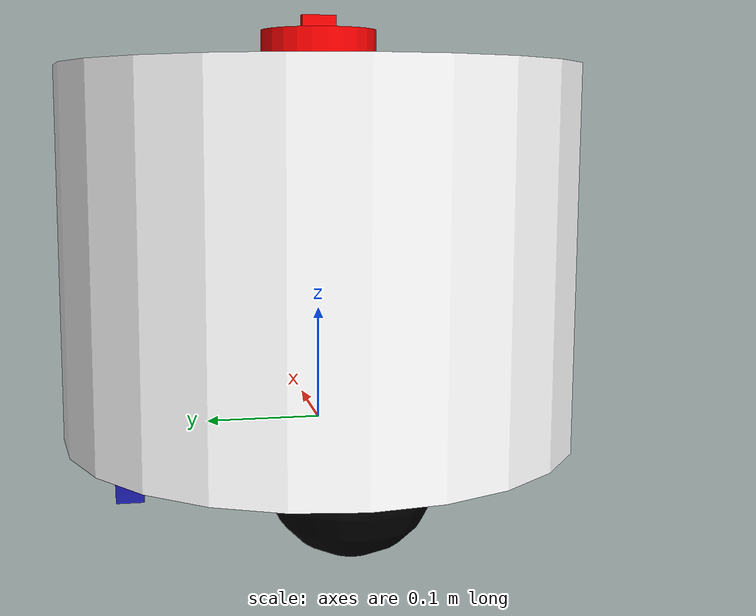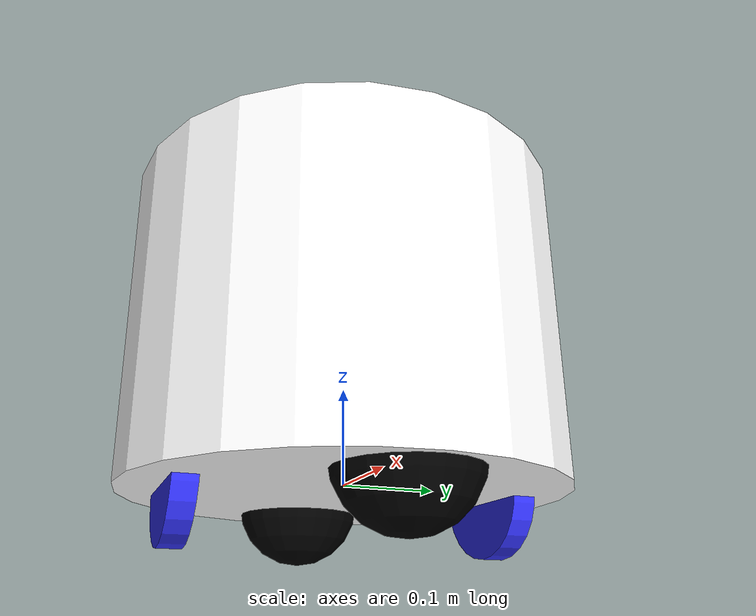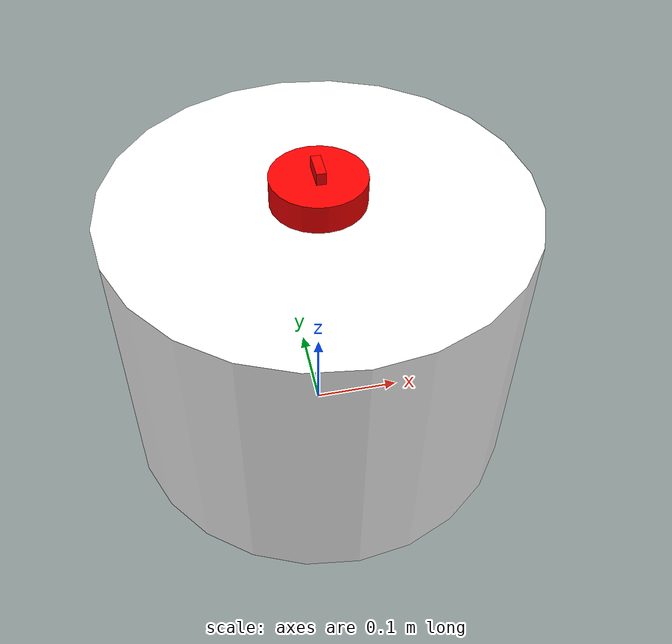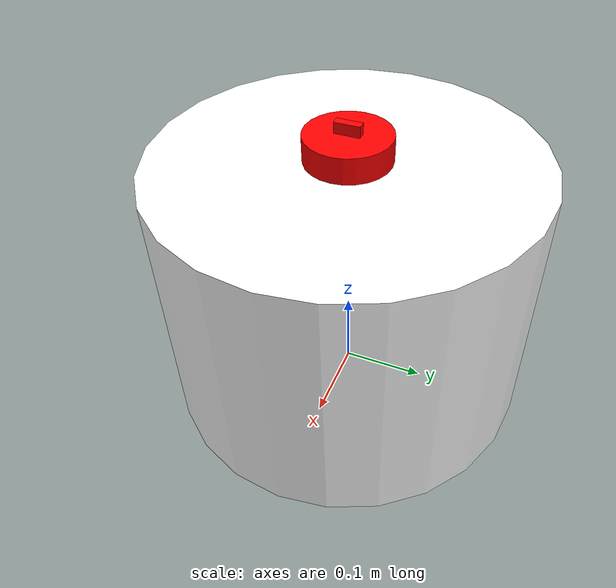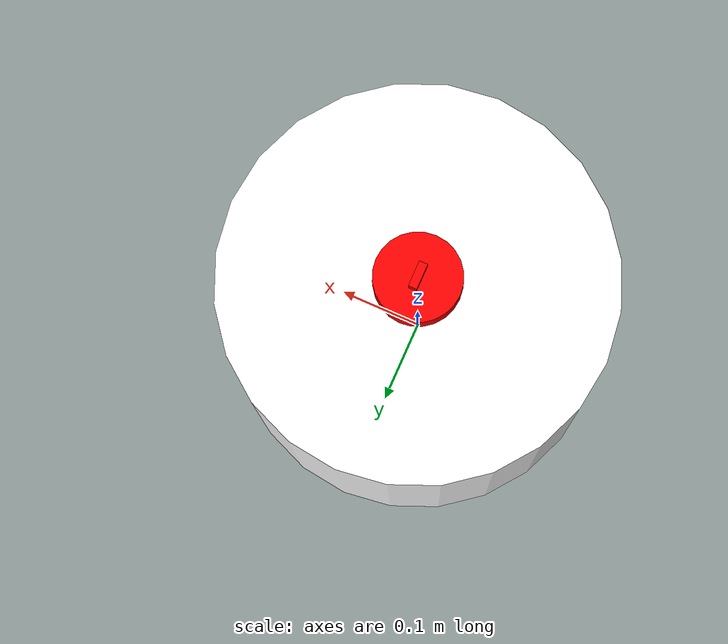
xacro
<?xml version="1.0"?>
<robot xmlns:xacro="http://www.ros.org/wiki/xacro"  name="robot">
    <xacro:arg name="use_ros2_control" default="true"/>
    <xacro:arg name="sim_mode" default="false"/>

    <xacro:include filename="robot_core.xacro" />

    <xacro:if value="$(arg use_ros2_control)">
    	<xacro:include filename="ros2_control.xacro" />
    </xacro:if>
    <xacro:unless value="$(arg use_ros2_control)">
       <xacro:include filename="gazebo_control.xacro" />
    </xacro:unless>

    <xacro:include filename="lidar.xacro" />
    <xacro:include filename="depth_camera.xacro" />

</robot>

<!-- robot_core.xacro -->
<robot xmlns:xacro="http://www.ros.org/wiki/xacro">

<xacro:include filename="inertial_macros.xacro" />

<material name="white">
    <color rgba="1 1 1 1"/>
</material>

<material name="orange">
    <color rgba="1 0.3 0.1 1"/>
</material>

<material name="blue">
    <color rgba="0.2 0.2 1 1"/>
</material>

<material name="black">
    <color rgba="0 0 0 1"/>
</material>
<material name="red">
    <color rgba="1 0 0 1"/>
</material>

<link name="base_link">
</link>

<joint name="base_footprint_joint" type="fixed">
    <parent link="base_link"/>
    <child link="base_footprint"/>
    <origin xyz="0 0 0" rpy="0 0 0"/>
</joint>

<link name="base_footprint">
</link>

<joint name="chassis_joint" type="fixed">
    <parent link="base_link"/>
    <child link="chassis"/>
    <origin xyz="0 0 0"/>
</joint>

<link name="chassis">
    <visual>
        <origin xyz="0 0 0.15" rpy="0 0 0"/>
        <geometry>
            <cylinder length="0.322" radius="0.225"/>
        </geometry>
        <material name="white"/>
    </visual>
    <collision>
        <origin xyz="0 0 0.15" rpy="0 0 0"/>
        <geometry>
            <cylinder length="0.322" radius="0.225"/>
        </geometry>
    </collision>
    <xacro:inertial_cylinder mass="0.5" length="0.322" radius="0.225">
        <origin xyz="0 0 0.15" rpy="0 0 0"/>
    </xacro:inertial_cylinder>
</link>

<joint name="left_wheel_joint" type="continuous">
    <parent link="base_link"/>
    <child link="left_wheel"/>
    <origin xyz="0 0.169 0" rpy="-${pi/2} 0 0"/>
    <axis xyz="0 0 1"/>
</joint>

<link name="left_wheel">
    <visual>
        <geometry>
            <cylinder length="0.024" radius="0.068" />
        </geometry>
        <material name="blue"/>
    </visual>
    <collision>
        <geometry>
            <sphere radius="0.068" />
        </geometry>
        <material name="blue"/>
    </collision>
    <gazebo reference="left_wheel">
        <material>Gazebo/Black</material>
        <mu1 value="0.1"/>
        <mu2 value="0.1"/>
    </gazebo>
    <xacro:inertial_cylinder mass="0.1" length="0.024" radius="0.068">
        <origin xyz="0 0 0" rpy="0 0 0"/>
    </xacro:inertial_cylinder>
</link>

<joint name="right_wheel_joint" type="continuous">
    <parent link="base_link"/>
    <child link="right_wheel"/>
    <origin xyz="0 -0.169 0" rpy="${pi/2} 0 0"/>
    <axis xyz="0 0 -1"/>
</joint>

<link name="right_wheel">
    <visual>
        <geometry>
            <cylinder length="0.024" radius="0.068" />
        </geometry>
        <material name="blue"/>
    </visual>
    <collision>
        <geometry>
            <sphere radius="0.068" />
        </geometry>
        <material name="blue"/>
    </collision>
    <gazebo reference="right_wheel">
        <material>Gazebo/Black</material>
        <mu1 value="0.1"/>
        <mu2 value="0.1"/>
    </gazebo>
    <xacro:inertial_cylinder mass="0.1" length="0.024" radius="0.068">
        <origin xyz="0 0 0" rpy="0 0 0"/>
    </xacro:inertial_cylinder>
</link>

<joint name="caster_wheel_joint1" type="fixed">
    <parent link="base_link"/>
    <child link="caster_wheel1"/>
    <origin xyz="-0.15 0 0" rpy="0 0 0"/>
</joint>

<link name="caster_wheel1">
    <visual>
        <geometry>
            <sphere radius="0.068" />
        </geometry>
        <material name="black"/>
    </visual>
    <collision>
        <geometry>
            <sphere radius="0.068" />
        </geometry>
        <material name="black"/>
    </collision>
    <gazebo reference="caster_wheel1">
        <mu1 value="0.001"/>
        <mu2 value="0.001"/>
    </gazebo>
    <xacro:inertial_sphere mass="0.1" radius="0.068">
        <origin xyz="0 0 0" rpy="0 0 0"/>
    </xacro:inertial_sphere>
</link>

<joint name="caster_wheel_joint2" type="fixed">
    <parent link="base_link"/>
    <child link="caster_wheel2"/>
    <origin xyz="0.15 0 0" rpy="0 0 0"/>
</joint>

<link name="caster_wheel2">
    <visual>
        <geometry>
            <sphere radius="0.068" />
        </geometry>
        <material name="black"/>
    </visual>
    <collision>
        <geometry>
            <sphere radius="0.068" />
        </geometry>
        <material name="black"/>
    </collision>
    <gazebo reference="caster_wheel2">
        <mu1 value="0.001"/>
        <mu2 value="0.001"/>
    </gazebo>
    <xacro:inertial_sphere mass="0.1" radius="0.068">
        <origin xyz="0 0 0" rpy="0 0 0"/>
    </xacro:inertial_sphere>
</link>

</robot>

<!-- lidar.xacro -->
<robot xmlns:xacro="http://www.ros.org/wiki/xacro" >

    <joint name="laser_joint" type="fixed">
        <parent link="chassis"/>
        <child link="laser"/>
        <origin xyz="0 0 0.322" rpy="0 0 0"/>
    </joint>

<link name="laser">
    <visual>
        <geometry>
            <cylinder radius="0.05" length="0.04"/>
        </geometry>
        <material name="red"/>
    </visual>
    <collision>
        <geometry>
            <cylinder radius="0.05" length="0.04"/>
        </geometry>
    </collision>
    <xacro:inertial_cylinder mass="0.1" length="0.04" radius="0.05">
        <origin xyz="0 0 0" rpy="0 0 0"/>
    </xacro:inertial_cylinder>
</link>

<gazebo reference="laser">
    <material>Gazebo/Red</material>

    <sensor name="laser" type="ray">
    <pose> 0 0 0 0 0 0 </pose>
    <visualize>true</visualize>
    <update_rate>10</update_rate>
    <ray>
           <scan>
        <horizontal>
            <samples>360</samples>
            <min_angle>-3.14</min_angle>
            <max_angle>3.14</max_angle>
        </horizontal>
    </scan>
    <range>
        <min>0.3</min>
        <max>12</max>
    </range>
    </ray>
<plugin name="laser_controller" filename="libgazebo_ros_ray_sensor.so">
    <ros>
        <argument>~/out:=scan</argument>
    </ros>
    <output_type>sensor_msgs/LaserScan</output_type>
    <frame_name>laser</frame_name>
</plugin>
</sensor>
</gazebo>

</robot>

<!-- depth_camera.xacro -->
<robot xmlns:xacro="http://www.ros.org/wiki/xacro" >

    <joint name="camera_joint" type="fixed">
        <parent link="chassis"/>
        <child link="camera_link"/>
        <origin xyz="0 0 0.340" rpy="0 0 0"/>
    </joint>

<link name="camera_link">
    <visual>
        <geometry>
            <box size="0.010 0.03 0.03"/>
        </geometry>
        <material name="red"/>
    </visual>
    <collision>
        <geometry>
            <box size="0.010 0.03 0.03"/>
        </geometry>
    </collision>

</link>

<joint name="camera_optical_joint" type="fixed">
    <origin xyz="0 0 0" rpy="${-pi/2} 0 ${-pi/2}" />
    <parent link="camera_link" />
    <child link="camera_link_optical" />
</joint>

<link name="camera_link_optical"></link>

   <gazebo reference="camera_link">
        <material>Gazebo/Red</material>

        <sensor name="camera" type="depth">
            <pose> 0 0 0 0 0 0 </pose>
            <visualize>true</visualize>
            <update_rate>10</update_rate>
            <camera>
                <horizontal_fov>1.089</horizontal_fov>
                <image>
                    <format>R8G8B8</format>
                    <width>640</width>
                    <height>480</height>
                </image>
                <clip>
                    <near>0.05</near>
                    <far>8.0</far>
                </clip>
            </camera>
            <plugin name="camera_controller" filename="libgazebo_ros_camera.so">
                <frame_name>camera_link_optical</frame_name>
                <min_depth>0.1</min_depth>
                <max_depth>100.0</max_depth>
            </plugin>
        </sensor>
    </gazebo>

</robot>
